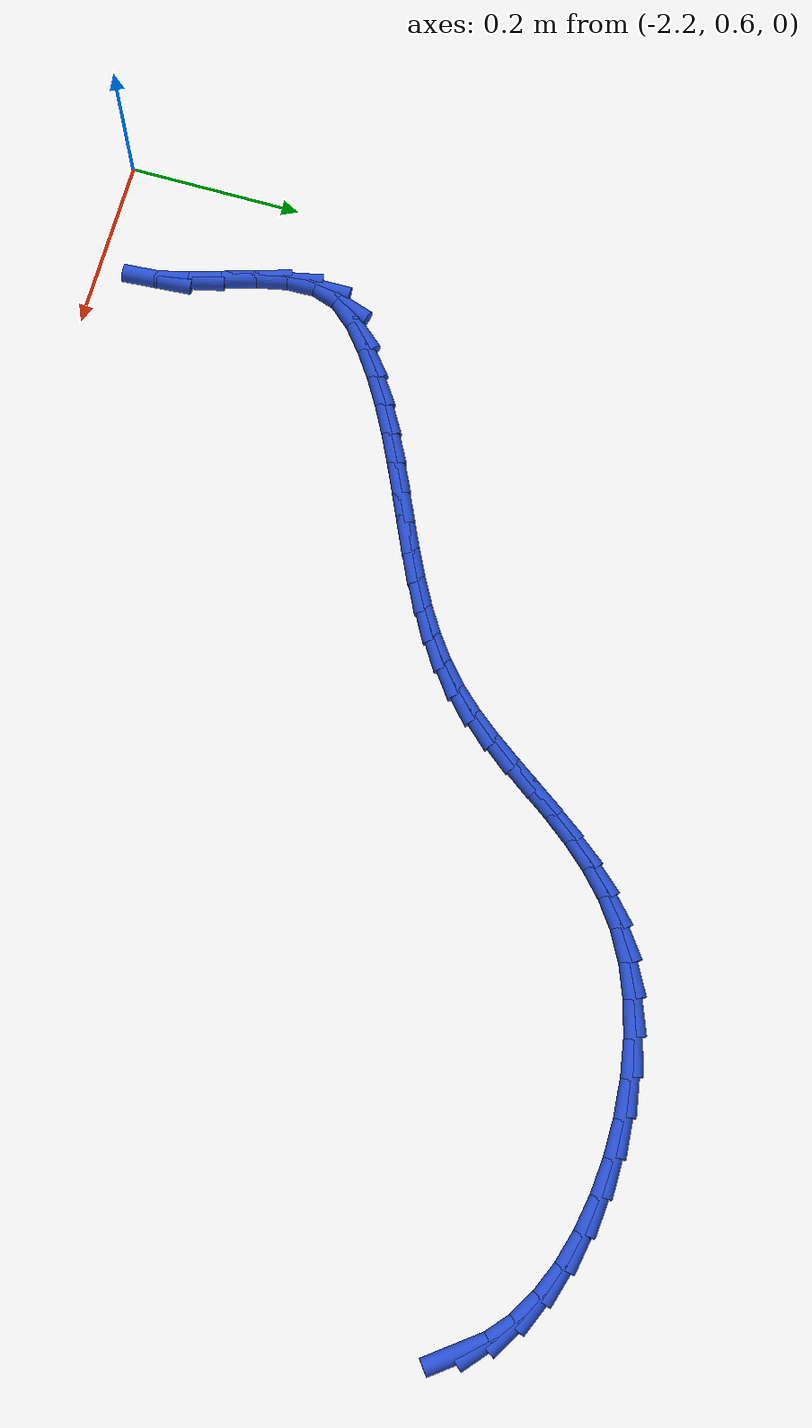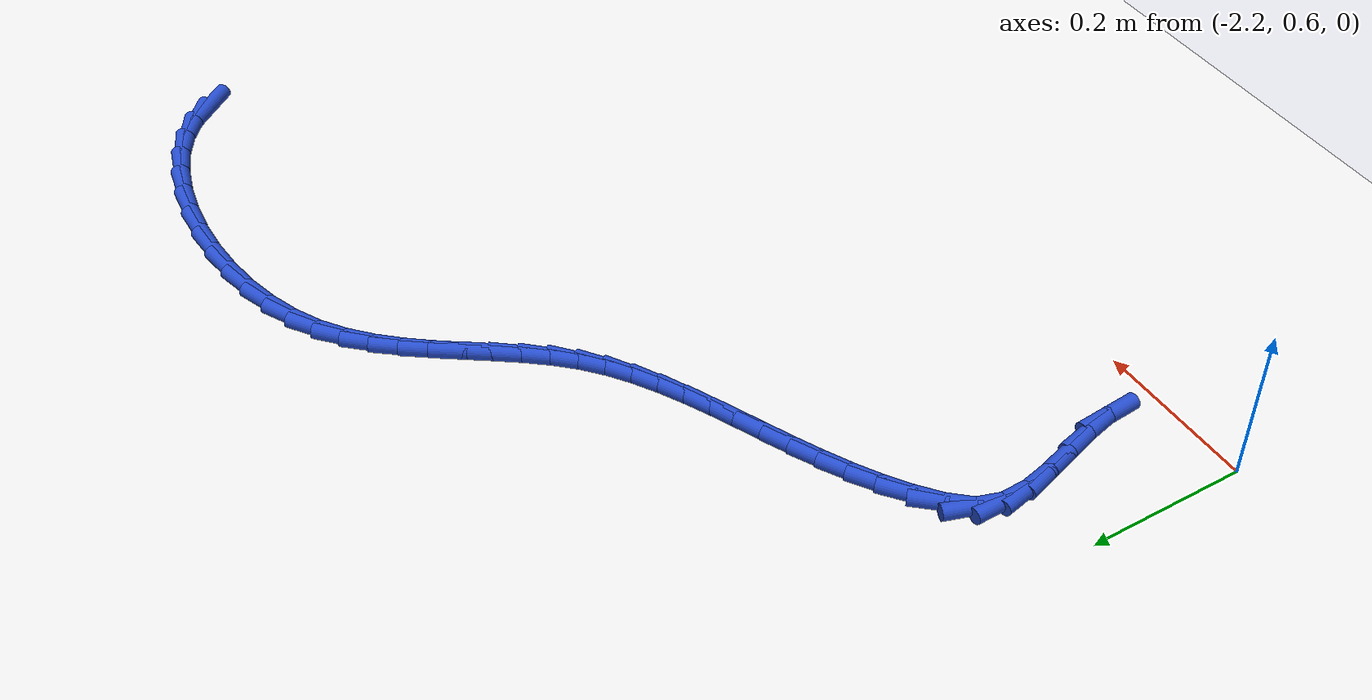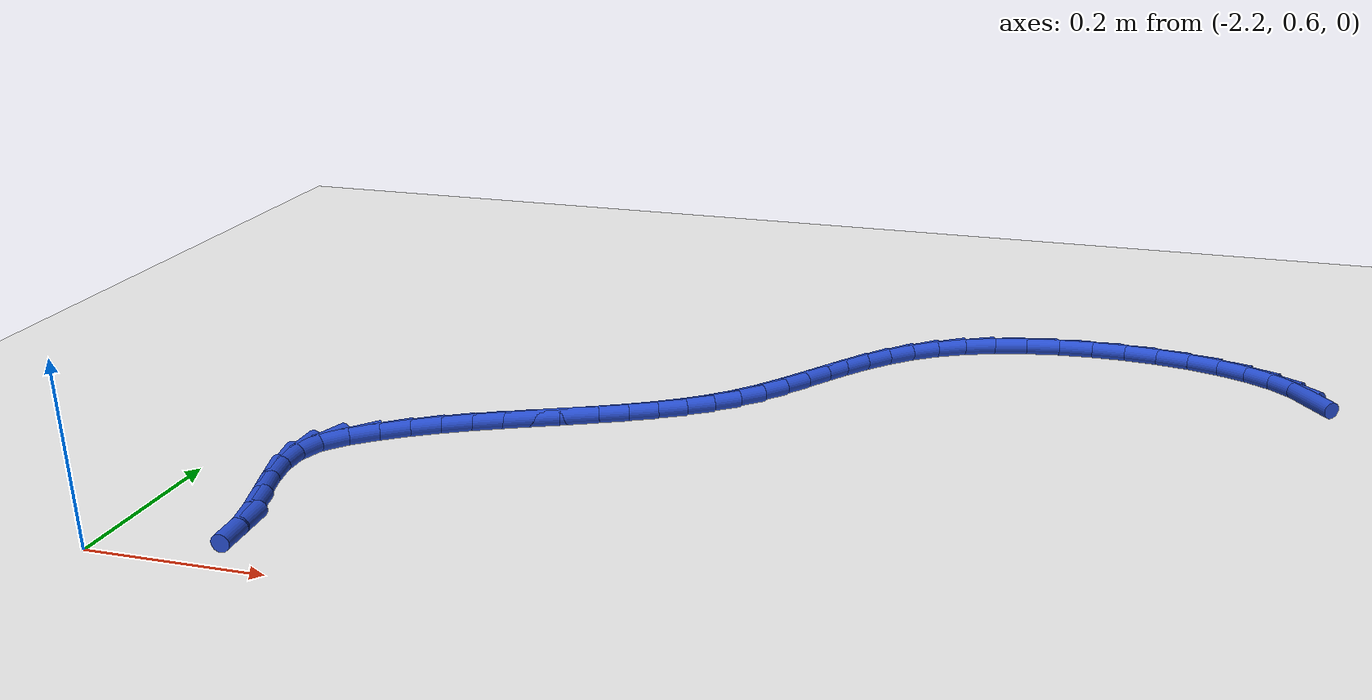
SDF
<sdf version="1.6">
 <world name="default">
  <model name="ground_plane">
   <static>1</static>
   <link name="link">
    <collision name="collision">
     <geometry><plane><normal>0 0 1</normal><size>100 100</size></plane></geometry>
     <surface><friction><ode><mu>100</mu><mu2>50</mu2></ode></friction></surface>
    </collision>
    <visual name="visual">
     <cast_shadows>0</cast_shadows>
     <geometry><plane><normal>0 0 1</normal><size>100 100</size></plane></geometry>
     <material>
      <script><uri>file://media/materials/scripts/gazebo.material</uri><name>Gazebo/WhiteGlow</name></script>
     </material>
    </visual>
   </link>
  </model>
  <model name="line">
   <link name="link_64">
    <pose>-1.0340563334467385 1.3087159583565962 0.01 0 1.57 -0.9237976834885151</pose>
    <collision name="collision">
     <geometry><cylinder><radius>0.01</radius><length>0.08</length></cylinder></geometry>
    </collision>
    <visual name="visual">
     <material>
      <script><name>Gazebo/Blue</name><uri>file://media/materials/scripts/gazebo.material</uri></script>
     </material>
     <geometry><cylinder><radius>0.01</radius><length>0.08</length></cylinder></geometry>
    </visual>
   </link>
   <link name="link_65">
    <pose>-1.0526874907154857 1.3333773321898743 0.01 0 1.57 -0.7144008248284482</pose>
    <collision name="collision">
     <geometry><cylinder><radius>0.01</radius><length>0.08</length></cylinder></geometry>
    </collision>
    <visual name="visual">
     <material>
      <script><name>Gazebo/Blue</name><uri>file://media/materials/scripts/gazebo.material</uri></script>
     </material>
     <geometry><cylinder><radius>0.01</radius><length>0.08</length></cylinder></geometry>
    </visual>
   </link>
   <link name="link_66">
    <pose>-1.0772047328168304 1.3546389267251435 0.01 0 1.57 -0.5431968164326149</pose>
    <collision name="collision">
     <geometry><cylinder><radius>0.01</radius><length>0.08</length></cylinder></geometry>
    </collision>
    <visual name="visual">
     <material>
      <script><name>Gazebo/Blue</name><uri>file://media/materials/scripts/gazebo.material</uri></script>
     </material>
     <geometry><cylinder><radius>0.01</radius><length>0.08</length></cylinder></geometry>
    </visual>
   </link>
   <link name="link_67">
    <pose>-1.1067529861656058 1.372479673500053 0.01 0 1.57 -0.4035283579934163</pose>
    <collision name="collision">
     <geometry><cylinder><radius>0.01</radius><length>0.08</length></cylinder></geometry>
    </collision>
    <visual name="visual">
     <material>
      <script><name>Gazebo/Blue</name><uri>file://media/materials/scripts/gazebo.material</uri></script>
     </material>
     <geometry><cylinder><radius>0.01</radius><length>0.08</length></cylinder></geometry>
    </visual>
   </link>
   <link name="link_68">
    <pose>-1.1404771771766458 1.386878504052252 0.01 0 1.57 -0.2870509433676821</pose>
    <collision name="collision">
     <geometry><cylinder><radius>0.01</radius><length>0.08</length></cylinder></geometry>
    </collision>
    <visual name="visual">
     <material>
      <script><name>Gazebo/Blue</name><uri>file://media/materials/scripts/gazebo.material</uri></script>
     </material>
     <geometry><cylinder><radius>0.01</radius><length>0.08</length></cylinder></geometry>
    </visual>
   </link>
   <link name="link_69">
    <pose>-1.1775222322647836 1.3978143499193891 0.01 0 1.57 -0.1864115340558828</pose>
    <collision name="collision">
     <geometry><cylinder><radius>0.01</radius><length>0.08</length></cylinder></geometry>
    </collision>
    <visual name="visual">
     <material>
      <script><name>Gazebo/Blue</name><uri>file://media/materials/scripts/gazebo.material</uri></script>
     </material>
     <geometry><cylinder><radius>0.01</radius><length>0.08</length></cylinder></geometry>
    </visual>
   </link>
   <link name="link_70">
    <pose>-1.217033077844853 1.4052661426391135 0.01 0 1.57 -0.09568263873464204</pose>
    <collision name="collision">
     <geometry><cylinder><radius>0.01</radius><length>0.08</length></cylinder></geometry>
    </collision>
    <visual name="visual">
     <material>
      <script><name>Gazebo/Blue</name><uri>file://media/materials/scripts/gazebo.material</uri></script>
     </material>
     <geometry><cylinder><radius>0.01</radius><length>0.08</length></cylinder></geometry>
    </visual>
   </link>
   <link name="link_71">
    <pose>-1.2581546403316868 1.409212813749074 0.01 0 1.57 -0.010040471896799793</pose>
    <collision name="collision">
     <geometry><cylinder><radius>0.01</radius><length>0.08</length></cylinder></geometry>
    </collision>
    <visual name="visual">
     <material>
      <script><name>Gazebo/Blue</name><uri>file://media/materials/scripts/gazebo.material</uri></script>
     </material>
     <geometry><cylinder><radius>0.01</radius><length>0.08</length></cylinder></geometry>
    </visual>
   </link>
   <link name="link_72">
    <pose>-1.3000318461401197 1.4096332947869203 0.01 0 1.57 0.07470380598701226</pose>
    <collision name="collision">
     <geometry><cylinder><radius>0.01</radius><length>0.08</length></cylinder></geometry>
    </collision>
    <visual name="visual">
     <material>
      <script><name>Gazebo/Blue</name><uri>file://media/materials/scripts/gazebo.material</uri></script>
     </material>
     <geometry><cylinder><radius>0.01</radius><length>0.08</length></cylinder></geometry>
    </visual>
   </link>
   <link name="link_73">
    <pose>-1.3418096216849844 1.4065065172903006 0.01 0 1.57 0.16255506380656906</pose>
    <collision name="collision">
     <geometry><cylinder><radius>0.01</radius><length>0.08</length></cylinder></geometry>
    </collision>
    <visual name="visual">
     <material>
      <script><name>Gazebo/Blue</name><uri>file://media/materials/scripts/gazebo.material</uri></script>
     </material>
     <geometry><cylinder><radius>0.01</radius><length>0.08</length></cylinder></geometry>
    </visual>
   </link>
   <link name="link_74">
    <pose>-1.382632893381115 1.3998114127968642 0.01 0 1.57 0.2577488885896882</pose>
    <collision name="collision">
     <geometry><cylinder><radius>0.01</radius><length>0.08</length></cylinder></geometry>
    </collision>
    <visual name="visual">
     <material>
      <script><name>Gazebo/Blue</name><uri>file://media/materials/scripts/gazebo.material</uri></script>
     </material>
     <geometry><cylinder><radius>0.01</radius><length>0.08</length></cylinder></geometry>
    </visual>
   </link>
   <link name="link_75">
    <pose>-1.4216465876433448 1.3895269128442598 0.01 0 1.57 0.36512464760881835</pose>
    <collision name="collision">
     <geometry><cylinder><radius>0.01</radius><length>0.08</length></cylinder></geometry>
    </collision>
    <visual name="visual">
     <material>
      <script><name>Gazebo/Blue</name><uri>file://media/materials/scripts/gazebo.material</uri></script>
     </material>
     <geometry><cylinder><radius>0.01</radius><length>0.08</length></cylinder></geometry>
    </visual>
   </link>
   <link name="link_76">
    <pose>-1.4579956308865074 1.3756319489701365 0.01 0 1.57 0.490246827140666</pose>
    <collision name="collision">
     <geometry><cylinder><radius>0.01</radius><length>0.08</length></cylinder></geometry>
    </collision>
    <visual name="visual">
     <material>
      <script><name>Gazebo/Blue</name><uri>file://media/materials/scripts/gazebo.material</uri></script>
     </material>
     <geometry><cylinder><radius>0.01</radius><length>0.08</length></cylinder></geometry>
    </visual>
   </link>
   <link name="link_77">
    <pose>-1.4908303533479226 1.358107885585423 0.01 0 1.57 0.6256152764418712</pose>
    <collision name="collision">
     <geometry><cylinder><radius>0.01</radius><length>0.08</length></cylinder></geometry>
    </collision>
    <visual name="visual">
     <material>
      <script><name>Gazebo/Blue</name><uri>file://media/materials/scripts/gazebo.material</uri></script>
     </material>
     <geometry><cylinder><radius>0.01</radius><length>0.08</length></cylinder></geometry>
    </visual>
   </link>
   <link name="link_78">
    <pose>-1.5198161315544412 1.3371679678407862 0.01 0 1.57 0.7447196164702695</pose>
    <collision name="collision">
     <geometry><cylinder><radius>0.01</radius><length>0.08</length></cylinder></geometry>
    </collision>
    <visual name="visual">
     <material>
      <script><name>Gazebo/Blue</name><uri>file://media/materials/scripts/gazebo.material</uri></script>
     </material>
     <geometry><cylinder><radius>0.01</radius><length>0.08</length></cylinder></geometry>
    </visual>
   </link>
   <link name="link_79">
    <pose>-1.5455515134215212 1.3134455671479508 0.01 0 1.57 0.8393208586592773</pose>
    <collision name="collision">
     <geometry><cylinder><radius>0.01</radius><length>0.08</length></cylinder></geometry>
    </collision>
    <visual name="visual">
     <material>
      <script><name>Gazebo/Blue</name><uri>file://media/materials/scripts/gazebo.material</uri></script>
     </material>
     <geometry><cylinder><radius>0.01</radius><length>0.08</length></cylinder></geometry>
    </visual>
   </link>
   <link name="link_80">
    <pose>-1.5687334524542067 1.2876183584334353 0.01 0 1.57 0.9068419900953232</pose>
    <collision name="collision">
     <geometry><cylinder><radius>0.01</radius><length>0.08</length></cylinder></geometry>
    </collision>
    <visual name="visual">
     <material>
      <script><name>Gazebo/Blue</name><uri>file://media/materials/scripts/gazebo.material</uri></script>
     </material>
     <geometry><cylinder><radius>0.01</radius><length>0.08</length></cylinder></geometry>
    </visual>
   </link>
   <link name="link_81">
    <pose>-1.59005890215754 1.260364016623758 0.01 0 1.57 0.9466985407242816</pose>
    <collision name="collision">
     <geometry><cylinder><radius>0.01</radius><length>0.08</length></cylinder></geometry>
    </collision>
    <visual name="visual">
     <material>
      <script><name>Gazebo/Blue</name><uri>file://media/materials/scripts/gazebo.material</uri></script>
     </material>
     <geometry><cylinder><radius>0.01</radius><length>0.08</length></cylinder></geometry>
    </visual>
   </link>
   <link name="link_82">
    <pose>-1.6102248160365658 1.2323602166454375 0.01 0 1.57 0.9588660205917727</pose>
    <collision name="collision">
     <geometry><cylinder><radius>0.01</radius><length>0.08</length></cylinder></geometry>
    </collision>
    <visual name="visual">
     <material>
      <script><name>Gazebo/Blue</name><uri>file://media/materials/scripts/gazebo.material</uri></script>
     </material>
     <geometry><cylinder><radius>0.01</radius><length>0.08</length></cylinder></geometry>
    </visual>
   </link>
   <link name="link_83">
    <pose>-1.6299281475963279 1.2042846334249926 0.01 0 1.57 0.9429591749353644</pose>
    <collision name="collision">
     <geometry><cylinder><radius>0.01</radius><length>0.08</length></cylinder></geometry>
    </collision>
    <visual name="visual">
     <material>
      <script><name>Gazebo/Blue</name><uri>file://media/materials/scripts/gazebo.material</uri></script>
     </material>
     <geometry><cylinder><radius>0.01</radius><length>0.08</length></cylinder></geometry>
    </visual>
   </link>
   <link name="link_84">
    <pose>-1.64986585034187 1.1768149418889415 0.01 0 1.57 0.8979180222260938</pose>
    <collision name="collision">
     <geometry><cylinder><radius>0.01</radius><length>0.08</length></cylinder></geometry>
    </collision>
    <visual name="visual">
     <material>
      <script><name>Gazebo/Blue</name><uri>file://media/materials/scripts/gazebo.material</uri></script>
     </material>
     <geometry><cylinder><radius>0.01</radius><length>0.08</length></cylinder></geometry>
    </visual>
   </link>
   <link name="link_85">
    <pose>-1.6707348777782358 1.1506288169638033 0.01 0 1.57 0.8223568574986998</pose>
    <collision name="collision">
     <geometry><cylinder><radius>0.01</radius><length>0.08</length></cylinder></geometry>
    </collision>
    <visual name="visual">
     <material>
      <script><name>Gazebo/Blue</name><uri>file://media/materials/scripts/gazebo.material</uri></script>
     </material>
     <geometry><cylinder><radius>0.01</radius><length>0.08</length></cylinder></geometry>
    </visual>
   </link>
   <link name="link_86">
    <pose>-1.69323218341047 1.1264039335760956 0.01 0 1.57 0.7225174636388793</pose>
    <collision name="collision">
     <geometry><cylinder><radius>0.01</radius><length>0.08</length></cylinder></geometry>
    </collision>
    <visual name="visual">
     <material>
      <script><name>Gazebo/Blue</name><uri>file://media/materials/scripts/gazebo.material</uri></script>
     </material>
     <geometry><cylinder><radius>0.01</radius><length>0.08</length></cylinder></geometry>
    </visual>
   </link>
   <link name="link_87">
    <pose>-1.71790226618263 1.1046564715167362 0.01 0 1.57 0.6302737349439772</pose>
    <collision name="collision">
     <geometry><cylinder><radius>0.01</radius><length>0.08</length></cylinder></geometry>
    </collision>
    <visual name="visual">
     <material>
      <script><name>Gazebo/Blue</name><uri>file://media/materials/scripts/gazebo.material</uri></script>
     </material>
     <geometry><cylinder><radius>0.01</radius><length>0.08</length></cylinder></geometry>
    </visual>
   </link>
   <link name="link_88">
    <pose>-1.7446041784092683 1.0851765168759027 0.01 0 1.57 0.5554582057265051</pose>
    <collision name="collision">
     <geometry><cylinder><radius>0.01</radius><length>0.08</length></cylinder></geometry>
    </collision>
    <visual name="visual">
     <material>
      <script><name>Gazebo/Blue</name><uri>file://media/materials/scripts/gazebo.material</uri></script>
     </material>
     <geometry><cylinder><radius>0.01</radius><length>0.08</length></cylinder></geometry>
    </visual>
   </link>
   <link name="link_89">
    <pose>-1.773004416140944 1.0675501808691383 0.01 0 1.57 0.4980806106346789</pose>
    <collision name="collision">
     <geometry><cylinder><radius>0.01</radius><length>0.08</length></cylinder></geometry>
    </collision>
    <visual name="visual">
     <material>
      <script><name>Gazebo/Blue</name><uri>file://media/materials/scripts/gazebo.material</uri></script>
     </material>
     <geometry><cylinder><radius>0.01</radius><length>0.08</length></cylinder></geometry>
    </visual>
   </link>
   <link name="link_90">
    <pose>-1.8027694652908055 1.0513635639734251 0.01 0 1.57 0.4574622771058405</pose>
    <collision name="collision">
     <geometry><cylinder><radius>0.01</radius><length>0.08</length></cylinder></geometry>
    </collision>
    <visual name="visual">
     <material>
      <script><name>Gazebo/Blue</name><uri>file://media/materials/scripts/gazebo.material</uri></script>
     </material>
     <geometry><cylinder><radius>0.01</radius><length>0.08</length></cylinder></geometry>
    </visual>
   </link>
   <link name="link_91">
    <pose>-1.8335658117720006 1.0362027666657463 0.01 0 1.57 0.432751282660212</pose>
    <collision name="collision">
     <geometry><cylinder><radius>0.01</radius><length>0.08</length></cylinder></geometry>
    </collision>
    <visual name="visual">
     <material>
      <script><name>Gazebo/Blue</name><uri>file://media/materials/scripts/gazebo.material</uri></script>
     </material>
     <geometry><cylinder><radius>0.01</radius><length>0.08</length></cylinder></geometry>
    </visual>
   </link>
   <link name="link_92">
    <pose>-1.865059941497678 1.0216538894230829 0.01 0 1.57 0.4232343701844144</pose>
    <collision name="collision">
     <geometry><cylinder><radius>0.01</radius><length>0.08</length></cylinder></geometry>
    </collision>
    <visual name="visual">
     <material>
      <script><name>Gazebo/Blue</name><uri>file://media/materials/scripts/gazebo.material</uri></script>
     </material>
     <geometry><cylinder><radius>0.01</radius><length>0.08</length></cylinder></geometry>
    </visual>
   </link>
   <link name="link_93">
    <pose>-1.8969183403809844 1.0073030327224177 0.01 0 1.57 0.42848843522511765</pose>
    <collision name="collision">
     <geometry><cylinder><radius>0.01</radius><length>0.08</length></cylinder></geometry>
    </collision>
    <visual name="visual">
     <material>
      <script><name>Gazebo/Blue</name><uri>file://media/materials/scripts/gazebo.material</uri></script>
     </material>
     <geometry><cylinder><radius>0.01</radius><length>0.08</length></cylinder></geometry>
    </visual>
   </link>
   <link name="link_94">
    <pose>-1.9288074943350688 0.992736297040733 0.01 0 1.57 0.44842131145990527</pose>
    <collision name="collision">
     <geometry><cylinder><radius>0.01</radius><length>0.08</length></cylinder></geometry>
    </collision>
    <visual name="visual">
     <material>
      <script><name>Gazebo/Blue</name><uri>file://media/materials/scripts/gazebo.material</uri></script>
     </material>
     <geometry><cylinder><radius>0.01</radius><length>0.08</length></cylinder></geometry>
    </visual>
   </link>
   <link name="link_95">
    <pose>-1.960393889273079 0.9775397828550106 0.01 0 1.57 0.4832285979332037</pose>
    <collision name="collision">
     <geometry><cylinder><radius>0.01</radius><length>0.08</length></cylinder></geometry>
    </collision>
    <visual name="visual">
     <material>
      <script><name>Gazebo/Blue</name><uri>file://media/materials/scripts/gazebo.material</uri></script>
     </material>
     <geometry><cylinder><radius>0.01</radius><length>0.08</length></cylinder></geometry>
    </visual>
   </link>
   <link name="link_96">
    <pose>-1.9913440111081626 0.9612995906422331 0.01 0 1.57 0.5332659719753179</pose>
    <collision name="collision">
     <geometry><cylinder><radius>0.01</radius><length>0.08</length></cylinder></geometry>
    </collision>
    <visual name="visual">
     <material>
      <script><name>Gazebo/Blue</name><uri>file://media/materials/scripts/gazebo.material</uri></script>
     </material>
     <geometry><cylinder><radius>0.01</radius><length>0.08</length></cylinder></geometry>
    </visual>
   </link>
   <link name="link_97">
    <pose>-2.0213243457534684 0.9436018208793827 0.01 0 1.57 0.5988168992478807</pose>
    <collision name="collision">
     <geometry><cylinder><radius>0.01</radius><length>0.08</length></cylinder></geometry>
    </collision>
    <visual name="visual">
     <material>
      <script><name>Gazebo/Blue</name><uri>file://media/materials/scripts/gazebo.material</uri></script>
     </material>
     <geometry><cylinder><radius>0.01</radius><length>0.08</length></cylinder></geometry>
    </visual>
   </link>
   <link name="link_98">
    <pose>-2.0500013791221434 0.9240325740434412 0.01 0 1.57 0.6797370699960652</pose>
    <collision name="collision">
     <geometry><cylinder><radius>0.01</radius><length>0.08</length></cylinder></geometry>
    </collision>
    <visual name="visual">
     <material>
      <script><name>Gazebo/Blue</name><uri>file://media/materials/scripts/gazebo.material</uri></script>
     </material>
     <geometry><cylinder><radius>0.01</radius><length>0.08</length></cylinder></geometry>
    </visual>
   </link>
   <link name="link_99">
    <pose>-2.0770415971273373 0.9021779506113914 0.01 0 1.57 0.8470257430745656</pose>
    <collision name="collision">
     <geometry><cylinder><radius>0.01</radius><length>0.08</length></cylinder></geometry>
    </collision>
    <visual name="visual">
     <material>
      <script><name>Gazebo/Blue</name><uri>file://media/materials/scripts/gazebo.material</uri></script>
     </material>
     <geometry><cylinder><radius>0.01</radius><length>0.08</length></cylinder></geometry>
    </visual>
   </link>
   <link name="link_100">
    <pose>-2.099140003377159 0.8771729977659987 0.01 0 1.57 1.2525505678427573</pose>
    <collision name="collision">
     <geometry><cylinder><radius>0.01</radius><length>0.08</length></cylinder></geometry>
    </collision>
    <visual name="visual">
     <material>
      <script><name>Gazebo/Blue</name><uri>file://media/materials/scripts/gazebo.material</uri></script>
     </material>
     <geometry><cylinder><radius>0.01</radius><length>0.08</length></cylinder></geometry>
    </visual>
   </link>
   <link name="link_101">
    <pose>-2.108797751816265 0.8478576699329484 0.01 0 1.57 -1.5536208227819208</pose>
    <collision name="collision">
     <geometry><cylinder><radius>0.01</radius><length>0.08</length></cylinder></geometry>
    </collision>
    <visual name="visual">
     <material>
      <script><name>Gazebo/Blue</name><uri>file://media/materials/scripts/gazebo.material</uri></script>
     </material>
     <geometry><cylinder><radius>0.01</radius><length>0.08</length></cylinder></geometry>
    </visual>
   </link>
   <link name="link_102">
    <pose>-2.108234928304849 0.8150919260003595 0.01 0 1.57 -1.3606874470224644</pose>
    <collision name="collision">
     <geometry><cylinder><radius>0.01</radius><length>0.08</length></cylinder></geometry>
    </collision>
    <visual name="visual">
     <material>
      <script><name>Gazebo/Blue</name><uri>file://media/materials/scripts/gazebo.material</uri></script>
     </material>
     <geometry><cylinder><radius>0.01</radius><length>0.08</length></cylinder></geometry>
    </visual>
   </link>
   <link name="link_103">
    <pose>-2.10073917772062 0.7799428986225888 0.01 0 1.57 -1.274278233087917</pose>
    <collision name="collision">
     <geometry><cylinder><radius>0.01</radius><length>0.08</length></cylinder></geometry>
    </collision>
    <visual name="visual">
     <material>
      <script><name>Gazebo/Blue</name><uri>file://media/materials/scripts/gazebo.material</uri></script>
     </material>
     <geometry><cylinder><radius>0.01</radius><length>0.08</length></cylinder></geometry>
    </visual>
   </link>
   <link name="link_104">
    <pose>-2.0895981449412835 0.7434777204539926 0.01 0 1.57 -1.267279225495677</pose>
    <collision name="collision">
     <geometry><cylinder><radius>0.01</radius><length>0.08</length></cylinder></geometry>
    </collision>
    <visual name="visual">
     <material>
      <script><name>Gazebo/Blue</name><uri>file://media/materials/scripts/gazebo.material</uri></script>
     </material>
     <geometry><cylinder><radius>0.01</radius><length>0.08</length></cylinder></geometry>
    </visual>
   </link>
   <link name="link_105">
    <pose>-2.078099474844545 0.7067635241489273 0.01 0 1.57 -1.3364738477551816</pose>
    <collision name="collision">
     <geometry><cylinder><radius>0.01</radius><length>0.08</length></cylinder></geometry>
    </collision>
    <visual name="visual">
     <material>
      <script><name>Gazebo/Blue</name><uri>file://media/materials/scripts/gazebo.material</uri></script>
     </material>
     <geometry><cylinder><radius>0.01</radius><length>0.08</length></cylinder></geometry>
    </visual>
   </link>
   <link name="link_106">
    <pose>-2.0695308123081126 0.6708674423617488 0.01 0 1.57 -1.4983055459424288</pose>
    <collision name="collision">
     <geometry><cylinder><radius>0.01</radius><length>0.08</length></cylinder></geometry>
    </collision>
    <visual name="visual">
     <material>
      <script><name>Gazebo/Blue</name><uri>file://media/materials/scripts/gazebo.material</uri></script>
     </material>
     <geometry><cylinder><radius>0.01</radius><length>0.08</length></cylinder></geometry>
    </visual>
   </link>
  </model>
 </world>
</sdf>
